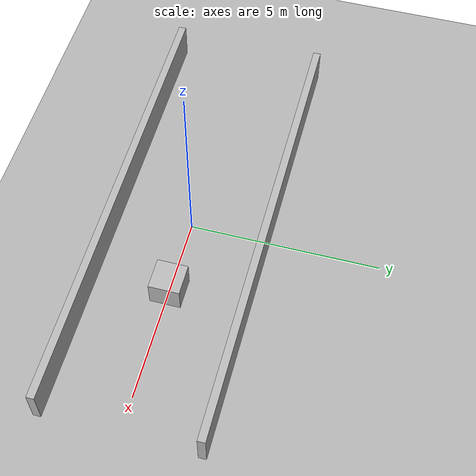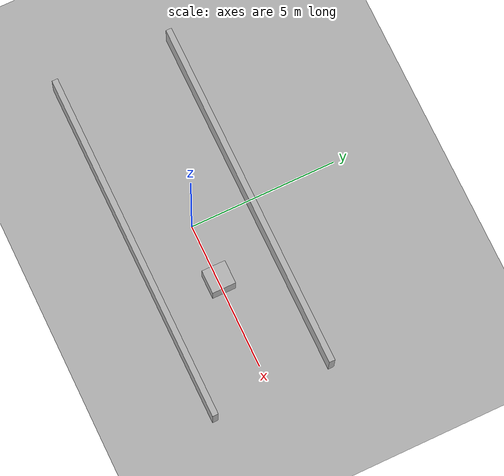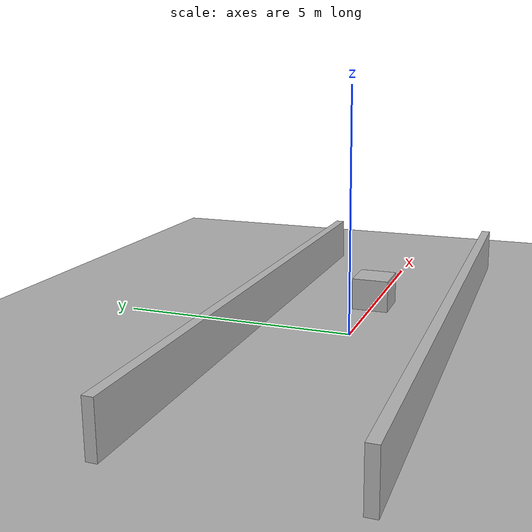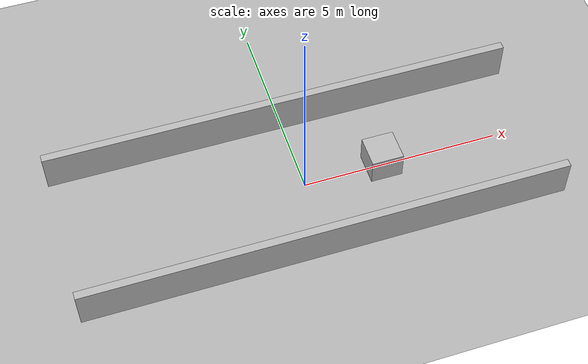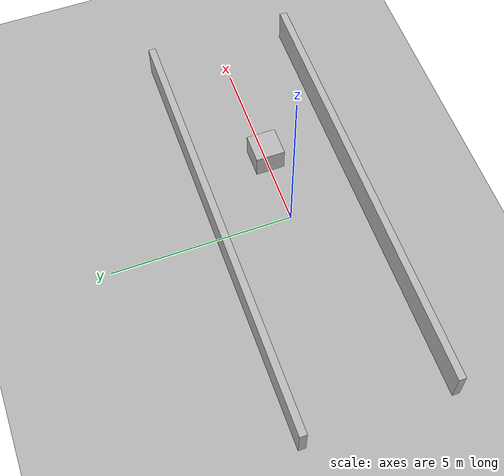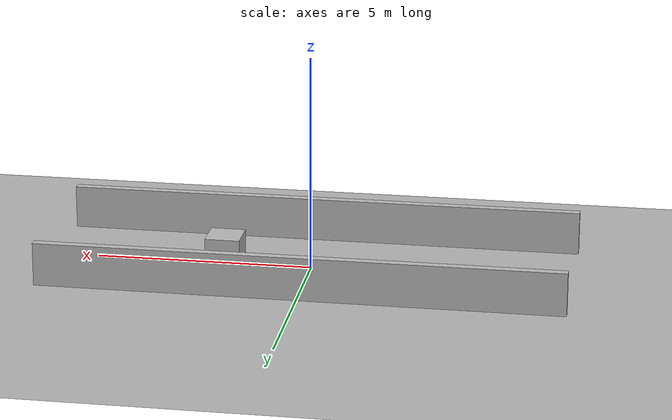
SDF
<?xml version="1.0" ?>
<sdf version="1.7">
  <world name="simple_corridor">

    <plugin filename="ignition-gazebo-physics-system"
            name="ignition::gazebo::systems::Physics"/>
    <plugin filename="ignition-gazebo-scene-broadcaster-system"
            name="ignition::gazebo::systems::SceneBroadcaster"/>

    <light type="directional" name="sun">
      <pose>0 0 10 0 0 0</pose>
      <diffuse>0.8 0.8 0.8 1</diffuse>
      <specular>0.2 0.2 0.2 1</specular>
      <direction>-0.5 0.1 -0.9</direction>
    </light>

    <!-- Ground -->
    <model name="ground_plane">
      <static>true</static>
      <link name="link">
        <collision name="collision">
          <geometry>
            <plane>
              <normal>0 0 1</normal>
              <size>20 10</size>
            </plane>
          </geometry>
        </collision>
        <visual name="visual">
          <geometry>
            <plane>
              <normal>0 0 1</normal>
              <size>20 10</size>
            </plane>
          </geometry>
          <material>
            <ambient>0.7 0.7 0.7 1</ambient>
            <diffuse>0.7 0.7 0.7 1</diffuse>
          </material>
        </visual>
      </link>
    </model>

    <!-- Left wall -->
    <model name="left_wall">
      <static>true</static>
      <pose>0 2 0.5 0 0 0</pose>
      <link name="link">
        <collision name="collision">
          <geometry>
            <box>
              <size>12 0.2 1.0</size>
            </box>
          </geometry>
        </collision>
        <visual name="visual">
          <geometry>
            <box>
              <size>12 0.2 1.0</size>
            </box>
          </geometry>
        </visual>
      </link>
    </model>

    <!-- Right wall -->
    <model name="right_wall">
      <static>true</static>
      <pose>0 -2 0.5 0 0 0</pose>
      <link name="link">
        <collision name="collision">
          <geometry>
            <box>
              <size>12 0.2 1.0</size>
            </box>
          </geometry>
        </collision>
        <visual name="visual">
          <geometry>
            <box>
              <size>12 0.2 1.0</size>
            </box>
          </geometry>
        </visual>
      </link>
    </model>

    <!-- Static obstacle -->
    <model name="box_obstacle">
      <static>true</static>
      <pose>2 0 0.35 0 0 0</pose>
      <link name="link">
        <collision name="collision">
          <geometry>
            <box>
              <size>0.8 0.8 0.7</size>
            </box>
          </geometry>
        </collision>
        <visual name="visual">
          <geometry>
            <box>
              <size>0.8 0.8 0.7</size>
            </box>
          </geometry>
        </visual>
      </link>
    </model>

  </world>
</sdf>
